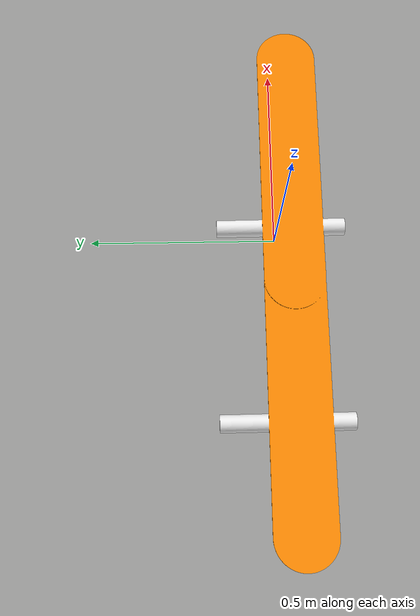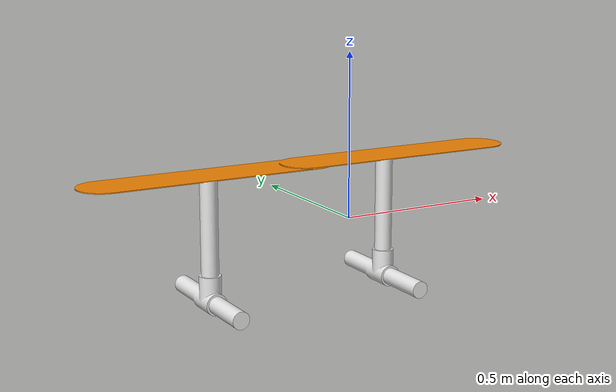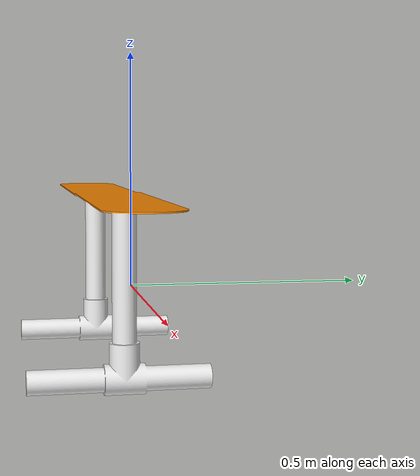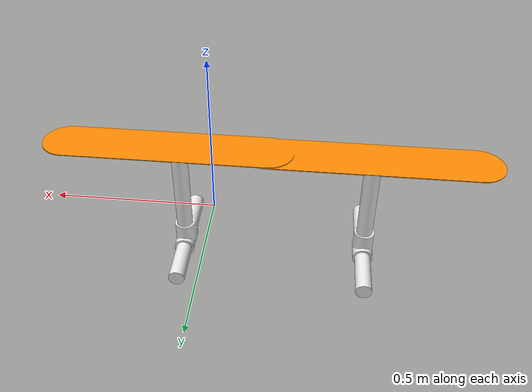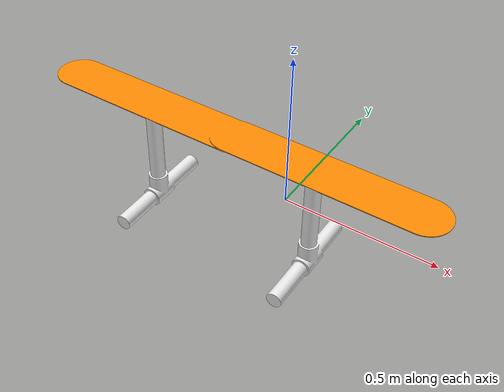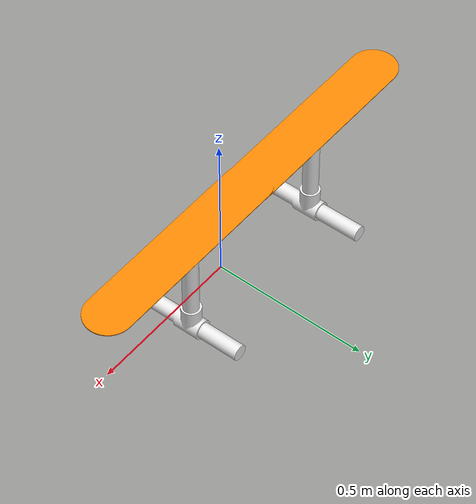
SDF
<?xml version="1.0"?>
<sdf version="1.9">
    <model name="path_marker">
        <static>false</static>
        <!-- TODO: compose of two links to change direction -->
        <link name="base">
            <visual name="path_marker_visual">
                <geometry>
                    <mesh>
                        <uri>../assets/meshes/path_marker.dae</uri>
                    </mesh>
                </geometry>
            </visual>
            <collision name="path_marker_collision">
                <geometry>
                    <mesh>
                        <uri>../assets/meshes/path_marker.dae</uri>
                    </mesh>
                </geometry>
            </collision>
        </link>
    </model>
</sdf>
